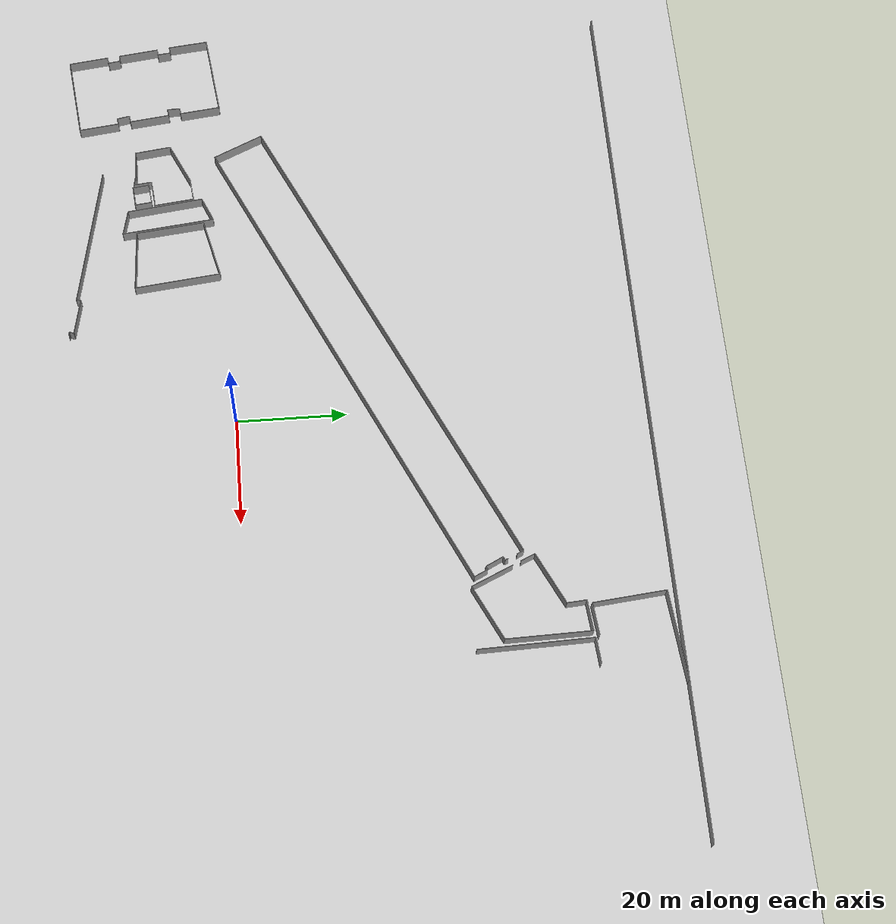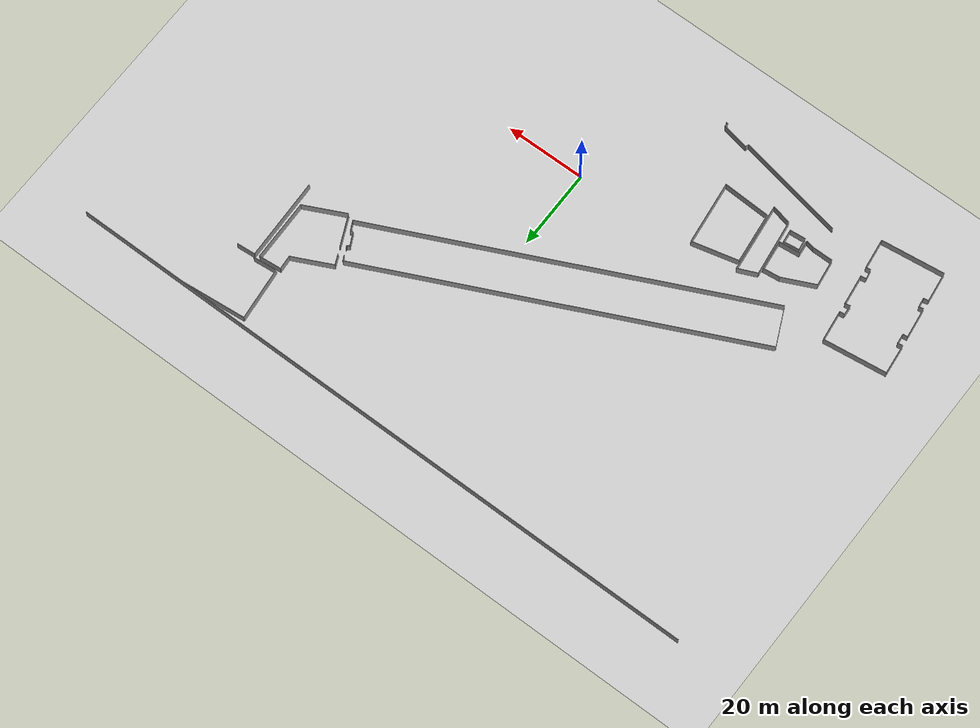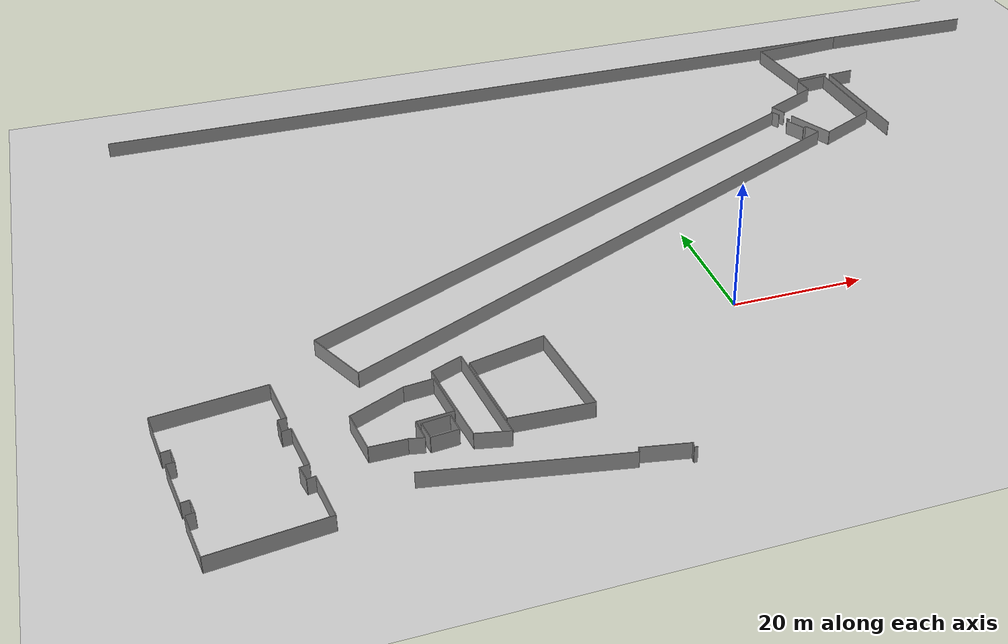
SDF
<sdf version="1.6">
 <world name="default">
  <model name="ground_plane">
   <static>1</static>
   <link name="link">
    <collision name="collision">
     <geometry><plane><normal>0 0 1</normal><size>100 100</size></plane></geometry>
     <surface><friction><ode><mu>100</mu><mu2>50</mu2></ode></friction></surface>
    </collision>
    <visual name="visual">
     <cast_shadows>0</cast_shadows>
     <geometry><plane><normal>0 0 1</normal><size>100 100</size></plane></geometry>
     <material>
      <script><uri>file://media/materials/scripts/gazebo.material</uri><name>Gazebo/Grey</name></script>
     </material>
    </visual>
   </link>
  </model>
  <model name="50023964">
   <static>1</static>
   <link name="Wall_165">
    <collision name="Wall_165_Collision">
     <geometry><box><size>27.4973243449 0.1 2.5</size></box></geometry>
     <pose>13.7486621724 0 1.25 0 0 0</pose>
    </collision>
    <visual name="Wall_165_Visual">
     <pose>13.7486621724 0 1.25 0 0 0</pose>
     <geometry><box><size>27.4973243449 0.1 2.5</size></box></geometry>
     <material>
      <script><uri>file://media/materials/scripts/gazebo.material</uri><name>Gazebo/Grey</name></script>
      <ambient>1 1 1 1</ambient>
     </material>
    </visual>
    <pose>29.4504461592 -97.8268076593 0 0 0 -0.189604450964</pose>
   </link>
   <link name="Wall_166">
    <collision name="Wall_166_Collision">
     <geometry><box><size>0.832153407852 0.1 2.5</size></box></geometry>
     <pose>0.416076703926 0 1.25 0 0 0</pose>
    </collision>
    <visual name="Wall_166_Visual">
     <pose>0.416076703926 0 1.25 0 0 0</pose>
     <geometry><box><size>0.832153407852 0.1 2.5</size></box></geometry>
     <material>
      <script><uri>file://media/materials/scripts/gazebo.material</uri><name>Gazebo/Grey</name></script>
      <ambient>1 1 1 1</ambient>
     </material>
    </visual>
    <pose>56.4549871392 -103.009240735 0 0 0 1.3554386271</pose>
   </link>
   <link name="Wall_167">
    <collision name="Wall_167_Collision">
     <geometry><box><size>6.86046675847 0.1 2.5</size></box></geometry>
     <pose>3.43023337924 0 1.25 0 0 0</pose>
    </collision>
    <visual name="Wall_167_Visual">
     <pose>3.43023337924 0 1.25 0 0 0</pose>
     <geometry><box><size>6.86046675847 0.1 2.5</size></box></geometry>
     <material>
      <script><uri>file://media/materials/scripts/gazebo.material</uri><name>Gazebo/Grey</name></script>
      <ambient>1 1 1 1</ambient>
     </material>
    </visual>
    <pose>56.6328157251 -102.196310057 0 0 0 -0.193764493746</pose>
   </link>
   <link name="Wall_168">
    <collision name="Wall_168_Collision">
     <geometry><box><size>0.832153407852 0.1 2.5</size></box></geometry>
     <pose>0.416076703926 0 1.25 0 0 0</pose>
    </collision>
    <visual name="Wall_168_Visual">
     <pose>0.416076703926 0 1.25 0 0 0</pose>
     <geometry><box><size>0.832153407852 0.1 2.5</size></box></geometry>
     <material>
      <script><uri>file://media/materials/scripts/gazebo.material</uri><name>Gazebo/Grey</name></script>
      <ambient>1 1 1 1</ambient>
     </material>
    </visual>
    <pose>63.3648979073 -103.51732241 0 0 0 -1.78615402649</pose>
   </link>
   <link name="Wall_169">
    <collision name="Wall_169_Collision">
     <geometry><box><size>0.468428158257 0.1 2.5</size></box></geometry>
     <pose>0.234214079128 0 1.25 0 0 0</pose>
    </collision>
    <visual name="Wall_169_Visual">
     <pose>0.234214079128 0 1.25 0 0 0</pose>
     <geometry><box><size>0.468428158257 0.1 2.5</size></box></geometry>
     <material>
      <script><uri>file://media/materials/scripts/gazebo.material</uri><name>Gazebo/Grey</name></script>
      <ambient>1 1 1 1</ambient>
     </material>
    </visual>
    <pose>63.1870693214 -104.330253088 0 0 0 -0.218668945874</pose>
   </link>
   <link name="Wall_184">
    <collision name="Wall_184_Collision">
     <geometry><box><size>7.49296690853 0.1 2.5</size></box></geometry>
     <pose>3.74648345427 0 1.25 0 0 0</pose>
    </collision>
    <visual name="Wall_184_Visual">
     <pose>3.74648345427 0 1.25 0 0 0</pose>
     <geometry><box><size>7.49296690853 0.1 2.5</size></box></geometry>
     <material>
      <script><uri>file://media/materials/scripts/gazebo.material</uri><name>Gazebo/Grey</name></script>
      <ambient>1 1 1 1</ambient>
     </material>
    </visual>
    <pose>3.46054428249 -104.013718205 0 0 0 1.70573616304</pose>
   </link>
   <link name="Wall_185">
    <collision name="Wall_185_Collision">
     <geometry><box><size>1.25928135181 0.1 2.5</size></box></geometry>
     <pose>0.629640675905 0 1.25 0 0 0</pose>
    </collision>
    <visual name="Wall_185_Visual">
     <pose>0.629640675905 0 1.25 0 0 0</pose>
     <geometry><box><size>1.25928135181 0.1 2.5</size></box></geometry>
     <material>
      <script><uri>file://media/materials/scripts/gazebo.material</uri><name>Gazebo/Grey</name></script>
      <ambient>1 1 1 1</ambient>
     </material>
    </visual>
    <pose>2.45251024102 -96.5888666603 0 0 0 0.160870380355</pose>
   </link>
   <link name="Wall_186">
    <collision name="Wall_186_Collision">
     <geometry><box><size>2.30914223702 0.1 2.5</size></box></geometry>
     <pose>1.15457111851 0 1.25 0 0 0</pose>
    </collision>
    <visual name="Wall_186_Visual">
     <pose>1.15457111851 0 1.25 0 0 0</pose>
     <geometry><box><size>2.30914223702 0.1 2.5</size></box></geometry>
     <material>
      <script><uri>file://media/materials/scripts/gazebo.material</uri><name>Gazebo/Grey</name></script>
      <ambient>1 1 1 1</ambient>
     </material>
    </visual>
    <pose>3.69553205678 -96.3871582357 0 0 0 1.71675416221</pose>
   </link>
   <link name="Wall_187">
    <collision name="Wall_187_Collision">
     <geometry><box><size>1.15473375954 0.1 2.5</size></box></geometry>
     <pose>0.577366879771 0 1.25 0 0 0</pose>
    </collision>
    <visual name="Wall_187_Visual">
     <pose>0.577366879771 0 1.25 0 0 0</pose>
     <geometry><box><size>1.15473375954 0.1 2.5</size></box></geometry>
     <material>
      <script><uri>file://media/materials/scripts/gazebo.material</uri><name>Gazebo/Grey</name></script>
      <ambient>1 1 1 1</ambient>
     </material>
    </visual>
    <pose>3.35969007018 -94.102568988 0 0 0 -2.9954331563</pose>
   </link>
   <link name="Wall_188">
    <collision name="Wall_188_Collision">
     <geometry><box><size>7.59288269853 0.1 2.5</size></box></geometry>
     <pose>3.79644134927 0 1.25 0 0 0</pose>
    </collision>
    <visual name="Wall_188_Visual">
     <pose>3.79644134927 0 1.25 0 0 0</pose>
     <geometry><box><size>7.59288269853 0.1 2.5</size></box></geometry>
     <material>
      <script><uri>file://media/materials/scripts/gazebo.material</uri><name>Gazebo/Grey</name></script>
      <ambient>1 1 1 1</ambient>
     </material>
    </visual>
    <pose>2.2172684259 -94.2707440221 0 0 0 1.70391607351</pose>
   </link>
   <link name="Wall_189">
    <collision name="Wall_189_Collision">
     <geometry><box><size>1.18360900284 0.1 2.5</size></box></geometry>
     <pose>0.591804501418 0 1.25 0 0 0</pose>
    </collision>
    <visual name="Wall_189_Visual">
     <pose>0.591804501418 0 1.25 0 0 0</pose>
     <geometry><box><size>1.18360900284 0.1 2.5</size></box></geometry>
     <material>
      <script><uri>file://media/materials/scripts/gazebo.material</uri><name>Gazebo/Grey</name></script>
      <ambient>1 1 1 1</ambient>
     </material>
    </visual>
    <pose>1.20948842526 -86.7450382649 0 0 0 0.113785914449</pose>
   </link>
   <link name="Wall_190">
    <collision name="Wall_190_Collision">
     <geometry><box><size>2.43782549676 0.1 2.5</size></box></geometry>
     <pose>1.21891274838 0 1.25 0 0 0</pose>
    </collision>
    <visual name="Wall_190_Visual">
     <pose>1.21891274838 0 1.25 0 0 0</pose>
     <geometry><box><size>2.43782549676 0.1 2.5</size></box></geometry>
     <material>
      <script><uri>file://media/materials/scripts/gazebo.material</uri><name>Gazebo/Grey</name></script>
      <ambient>1 1 1 1</ambient>
     </material>
    </visual>
    <pose>2.38544346004 -86.6106506621 0 0 0 1.69522887379</pose>
   </link>
   <link name="Wall_191">
    <collision name="Wall_191_Collision">
     <geometry><box><size>1.25431283755 0.1 2.5</size></box></geometry>
     <pose>0.627156418774 0 1.25 0 0 0</pose>
    </collision>
    <visual name="Wall_191_Visual">
     <pose>0.627156418774 0 1.25 0 0 0</pose>
     <geometry><box><size>1.25431283755 0.1 2.5</size></box></geometry>
     <material>
      <script><uri>file://media/materials/scripts/gazebo.material</uri><name>Gazebo/Grey</name></script>
      <ambient>1 1 1 1</ambient>
     </material>
    </visual>
    <pose>2.08288082309 -84.1916738116 0 0 0 -3.00731460829</pose>
   </link>
   <link name="Wall_192">
    <collision name="Wall_192_Collision">
     <geometry><box><size>7.43888077681 0.1 2.5</size></box></geometry>
     <pose>3.71944038841 0 1.25 0 0 0</pose>
    </collision>
    <visual name="Wall_192_Visual">
     <pose>3.71944038841 0 1.25 0 0 0</pose>
     <geometry><box><size>7.43888077681 0.1 2.5</size></box></geometry>
     <material>
      <script><uri>file://media/materials/scripts/gazebo.material</uri><name>Gazebo/Grey</name></script>
      <ambient>1 1 1 1</ambient>
     </material>
    </visual>
    <pose>0.839859007335 -84.3595948049 0 0 0 1.68393882538</pose>
   </link>
   <link name="Wall_193">
    <collision name="Wall_193_Collision">
     <geometry><box><size>15.7768453992 0.1 2.5</size></box></geometry>
     <pose>7.8884226996 0 1.25 0 0 0</pose>
    </collision>
    <visual name="Wall_193_Visual">
     <pose>7.8884226996 0 1.25 0 0 0</pose>
     <geometry><box><size>15.7768453992 0.1 2.5</size></box></geometry>
     <material>
      <script><uri>file://media/materials/scripts/gazebo.material</uri><name>Gazebo/Grey</name></script>
      <ambient>1 1 1 1</ambient>
     </material>
    </visual>
    <pose>0.0 -76.9682766505 0 0 0 0.12383571639</pose>
   </link>
   <link name="Wall_194">
    <collision name="Wall_194_Collision">
     <geometry><box><size>7.55099914807 0.1 2.5</size></box></geometry>
     <pose>3.77549957403 0 1.25 0 0 0</pose>
    </collision>
    <visual name="Wall_194_Visual">
     <pose>3.77549957403 0 1.25 0 0 0</pose>
     <geometry><box><size>7.55099914807 0.1 2.5</size></box></geometry>
     <material>
      <script><uri>file://media/materials/scripts/gazebo.material</uri><name>Gazebo/Grey</name></script>
      <ambient>1 1 1 1</ambient>
     </material>
    </visual>
    <pose>15.6560287066 -75.0195293893 0 0 0 -1.44589050377</pose>
   </link>
   <link name="Wall_195">
    <collision name="Wall_195_Collision">
     <geometry><box><size>1.22108955889 0.1 2.5</size></box></geometry>
     <pose>0.610544779447 0 1.25 0 0 0</pose>
    </collision>
    <visual name="Wall_195_Visual">
     <pose>0.610544779447 0 1.25 0 0 0</pose>
     <geometry><box><size>1.22108955889 0.1 2.5</size></box></geometry>
     <material>
      <script><uri>file://media/materials/scripts/gazebo.material</uri><name>Gazebo/Grey</name></script>
      <ambient>1 1 1 1</ambient>
     </material>
    </visual>
    <pose>16.5967419263 -82.5117017561 0 0 0 -3.00363814652</pose>
   </link>
   <link name="Wall_196">
    <collision name="Wall_196_Collision">
     <geometry><box><size>2.3892259267 0.1 2.5</size></box></geometry>
     <pose>1.19461296335 0 1.25 0 0 0</pose>
    </collision>
    <visual name="Wall_196_Visual">
     <pose>1.19461296335 0 1.25 0 0 0</pose>
     <geometry><box><size>2.3892259267 0.1 2.5</size></box></geometry>
     <material>
      <script><uri>file://media/materials/scripts/gazebo.material</uri><name>Gazebo/Grey</name></script>
      <ambient>1 1 1 1</ambient>
     </material>
    </visual>
    <pose>15.387253501 -82.6796227494 0 0 0 -1.51451928571</pose>
   </link>
   <link name="Wall_197">
    <collision name="Wall_197_Collision">
     <geometry><box><size>1.32573817046 0.1 2.5</size></box></geometry>
     <pose>0.662869085228 0 1.25 0 0 0</pose>
    </collision>
    <visual name="Wall_197_Visual">
     <pose>0.662869085228 0 1.25 0 0 0</pose>
     <geometry><box><size>1.32573817046 0.1 2.5</size></box></geometry>
     <material>
      <script><uri>file://media/materials/scripts/gazebo.material</uri><name>Gazebo/Grey</name></script>
      <ambient>1 1 1 1</ambient>
     </material>
    </visual>
    <pose>15.5216411038 -85.0650662094 0 0 0 0.152547347044</pose>
   </link>
   <link name="Wall_198">
    <collision name="Wall_198_Collision">
     <geometry><box><size>7.48849630573 0.1 2.5</size></box></geometry>
     <pose>3.74424815287 0 1.25 0 0 0</pose>
    </collision>
    <visual name="Wall_198_Visual">
     <pose>3.74424815287 0 1.25 0 0 0</pose>
     <geometry><box><size>7.48849630573 0.1 2.5</size></box></geometry>
     <material>
      <script><uri>file://media/materials/scripts/gazebo.material</uri><name>Gazebo/Grey</name></script>
      <ambient>1 1 1 1</ambient>
     </material>
    </visual>
    <pose>16.8319837414 -84.8636118256 0 0 0 -1.44032740091</pose>
   </link>
   <link name="Wall_199">
    <collision name="Wall_199_Collision">
     <geometry><box><size>1.33104126266 0.1 2.5</size></box></geometry>
     <pose>0.665520631328 0 1.25 0 0 0</pose>
    </collision>
    <visual name="Wall_199_Visual">
     <pose>0.665520631328 0 1.25 0 0 0</pose>
     <geometry><box><size>1.33104126266 0.1 2.5</size></box></geometry>
     <material>
      <script><uri>file://media/materials/scripts/gazebo.material</uri><name>Gazebo/Grey</name></script>
      <ambient>1 1 1 1</ambient>
     </material>
    </visual>
    <pose>17.8062303515 -92.2884633705 0 0 0 -2.96392423371</pose>
   </link>
   <link name="Wall_200">
    <collision name="Wall_200_Collision">
     <geometry><box><size>2.39820806939 0.1 2.5</size></box></geometry>
     <pose>1.1991040347 0 1.25 0 0 0</pose>
    </collision>
    <visual name="Wall_200_Visual">
     <pose>1.1991040347 0 1.25 0 0 0</pose>
     <geometry><box><size>2.39820806939 0.1 2.5</size></box></geometry>
     <material>
      <script><uri>file://media/materials/scripts/gazebo.material</uri><name>Gazebo/Grey</name></script>
      <ambient>1 1 1 1</ambient>
     </material>
    </visual>
    <pose>16.4961417548 -92.5237051856 0 0 0 -1.37344231589</pose>
   </link>
   <link name="Wall_201">
    <collision name="Wall_201_Collision">
     <geometry><box><size>1.19308596193 0.1 2.5</size></box></geometry>
     <pose>0.596542980965 0 1.25 0 0 0</pose>
    </collision>
    <visual name="Wall_201_Visual">
     <pose>0.596542980965 0 1.25 0 0 0</pose>
     <geometry><box><size>1.19308596193 0.1 2.5</size></box></geometry>
     <material>
      <script><uri>file://media/materials/scripts/gazebo.material</uri><name>Gazebo/Grey</name></script>
      <ambient>1 1 1 1</ambient>
     </material>
    </visual>
    <pose>16.9663713442 -94.8753612143 0 0 0 0.169664346654</pose>
   </link>
   <link name="Wall_202">
    <collision name="Wall_202_Collision">
     <geometry><box><size>7.52174596099 0.1 2.5</size></box></geometry>
     <pose>3.76087298049 0 1.25 0 0 0</pose>
    </collision>
    <visual name="Wall_202_Visual">
     <pose>3.76087298049 0 1.25 0 0 0</pose>
     <geometry><box><size>7.52174596099 0.1 2.5</size></box></geometry>
     <material>
      <script><uri>file://media/materials/scripts/gazebo.material</uri><name>Gazebo/Grey</name></script>
      <ambient>1 1 1 1</ambient>
     </material>
    </visual>
    <pose>18.142326379 -94.6739068305 0 0 0 -1.44090740775</pose>
   </link>
   <link name="Wall_203">
    <collision name="Wall_203_Collision">
     <geometry><box><size>15.7686714821 0.1 2.5</size></box></geometry>
     <pose>7.88433574103 0 1.25 0 0 0</pose>
    </collision>
    <visual name="Wall_203_Visual">
     <pose>7.88433574103 0 1.25 0 0 0</pose>
     <geometry><box><size>15.7686714821 0.1 2.5</size></box></geometry>
     <material>
      <script><uri>file://media/materials/scripts/gazebo.material</uri><name>Gazebo/Grey</name></script>
      <ambient>1 1 1 1</ambient>
     </material>
    </visual>
    <pose>19.1165729891 -102.132291766 0 0 0 -3.0219935331</pose>
   </link>
   <link name="Wall_204">
    <collision name="Wall_204_Collision">
     <geometry><box><size>3.03349316806 0.1 2.5</size></box></geometry>
     <pose>1.51674658403 0 1.25 0 0 0</pose>
    </collision>
    <visual name="Wall_204_Visual">
     <pose>1.51674658403 0 1.25 0 0 0</pose>
     <geometry><box><size>3.03349316806 0.1 2.5</size></box></geometry>
     <material>
      <script><uri>file://media/materials/scripts/gazebo.material</uri><name>Gazebo/Grey</name></script>
      <ambient>1 1 1 1</ambient>
     </material>
    </visual>
    <pose>32.8756787654 -92.1174938871 0 0 0 1.70967331597</pose>
   </link>
   <link name="Wall_205">
    <collision name="Wall_205_Collision">
     <geometry><box><size>3.91834907774 0.1 2.5</size></box></geometry>
     <pose>1.95917453887 0 1.25 0 0 0</pose>
    </collision>
    <visual name="Wall_205_Visual">
     <pose>1.95917453887 0 1.25 0 0 0</pose>
     <geometry><box><size>3.91834907774 0.1 2.5</size></box></geometry>
     <material>
      <script><uri>file://media/materials/scripts/gazebo.material</uri><name>Gazebo/Grey</name></script>
      <ambient>1 1 1 1</ambient>
     </material>
    </visual>
    <pose>32.4557492617 -89.113206948 0 0 0 0.124346952923</pose>
   </link>
   <link name="Wall_206">
    <collision name="Wall_206_Collision">
     <geometry><box><size>3.13734370677 0.1 2.5</size></box></geometry>
     <pose>1.56867185338 0 1.25 0 0 0</pose>
    </collision>
    <visual name="Wall_206_Visual">
     <pose>1.56867185338 0 1.25 0 0 0</pose>
     <geometry><box><size>3.13734370677 0.1 2.5</size></box></geometry>
     <material>
      <script><uri>file://media/materials/scripts/gazebo.material</uri><name>Gazebo/Grey</name></script>
      <ambient>1 1 1 1</ambient>
     </material>
    </visual>
    <pose>36.343844273 -88.6272268267 0 0 0 -1.45083035254</pose>
   </link>
   <link name="Wall_207">
    <collision name="Wall_207_Collision">
     <geometry><box><size>3.86193365125 0.1 2.5</size></box></geometry>
     <pose>1.93096682562 0 1.25 0 0 0</pose>
    </collision>
    <visual name="Wall_207_Visual">
     <pose>1.93096682562 0 1.25 0 0 0</pose>
     <geometry><box><size>3.86193365125 0.1 2.5</size></box></geometry>
     <material>
      <script><uri>file://media/materials/scripts/gazebo.material</uri><name>Gazebo/Grey</name></script>
      <ambient>1 1 1 1</ambient>
     </material>
    </visual>
    <pose>36.7193166301 -91.74202153 0 0 0 -3.04421490285</pose>
   </link>
   <link name="Wall_208">
    <collision name="Wall_208_Collision">
     <geometry><box><size>5.07119898185 0.1 2.5</size></box></geometry>
     <pose>2.53559949093 0 1.25 0 0 0</pose>
    </collision>
    <visual name="Wall_208_Visual">
     <pose>2.53559949093 0 1.25 0 0 0</pose>
     <geometry><box><size>5.07119898185 0.1 2.5</size></box></geometry>
     <material>
      <script><uri>file://media/materials/scripts/gazebo.material</uri><name>Gazebo/Grey</name></script>
      <ambient>1 1 1 1</ambient>
     </material>
    </visual>
    <pose>25.1190498873 -91.4760407736 0 0 0 -0.00375712088472</pose>
   </link>
   <link name="Wall_209">
    <collision name="Wall_209_Collision">
     <geometry><box><size>2.09821424189 0.1 2.5</size></box></geometry>
     <pose>1.04910712095 0 1.25 0 0 0</pose>
    </collision>
    <visual name="Wall_209_Visual">
     <pose>1.04910712095 0 1.25 0 0 0</pose>
     <geometry><box><size>2.09821424189 0.1 2.5</size></box></geometry>
     <material>
      <script><uri>file://media/materials/scripts/gazebo.material</uri><name>Gazebo/Grey</name></script>
      <ambient>1 1 1 1</ambient>
     </material>
    </visual>
    <pose>30.1902130768 -91.4950938363 0 0 0 -0.202856872319</pose>
   </link>
   <link name="Wall_210">
    <collision name="Wall_210_Collision">
     <geometry><box><size>3.38359539105 0.1 2.5</size></box></geometry>
     <pose>1.69179769553 0 1.25 0 0 0</pose>
    </collision>
    <visual name="Wall_210_Visual">
     <pose>1.69179769553 0 1.25 0 0 0</pose>
     <geometry><box><size>3.38359539105 0.1 2.5</size></box></geometry>
     <material>
      <script><uri>file://media/materials/scripts/gazebo.material</uri><name>Gazebo/Grey</name></script>
      <ambient>1 1 1 1</ambient>
     </material>
    </visual>
    <pose>32.2454034486 -91.9178177892 0 0 0 1.68456275865</pose>
   </link>
   <link name="Wall_211">
    <collision name="Wall_211_Collision">
     <geometry><box><size>5.25246358018 0.1 2.5</size></box></geometry>
     <pose>2.62623179009 0 1.25 0 0 0</pose>
    </collision>
    <visual name="Wall_211_Visual">
     <pose>2.62623179009 0 1.25 0 0 0</pose>
     <geometry><box><size>5.25246358018 0.1 2.5</size></box></geometry>
     <material>
      <script><uri>file://media/materials/scripts/gazebo.material</uri><name>Gazebo/Grey</name></script>
      <ambient>1 1 1 1</ambient>
     </material>
    </visual>
    <pose>31.861293703 -88.5560953923 0 0 0 0.102570654576</pose>
   </link>
   <link name="Wall_212">
    <collision name="Wall_212_Collision">
     <geometry><box><size>7.41221561848 0.1 2.5</size></box></geometry>
     <pose>3.70610780924 0 1.25 0 0 0</pose>
    </collision>
    <visual name="Wall_212_Visual">
     <pose>3.70610780924 0 1.25 0 0 0</pose>
     <geometry><box><size>7.41221561848 0.1 2.5</size></box></geometry>
     <material>
      <script><uri>file://media/materials/scripts/gazebo.material</uri><name>Gazebo/Grey</name></script>
      <ambient>1 1 1 1</ambient>
     </material>
    </visual>
    <pose>37.0861515989 -88.0182909403 0 0 0 1.69290675162</pose>
   </link>
   <link name="Wall_213">
    <collision name="Wall_213_Collision">
     <geometry><box><size>4.23397434508 0.1 2.5</size></box></geometry>
     <pose>2.11698717254 0 1.25 0 0 0</pose>
    </collision>
    <visual name="Wall_213_Visual">
     <pose>2.11698717254 0 1.25 0 0 0</pose>
     <geometry><box><size>4.23397434508 0.1 2.5</size></box></geometry>
     <material>
      <script><uri>file://media/materials/scripts/gazebo.material</uri><name>Gazebo/Grey</name></script>
      <ambient>1 1 1 1</ambient>
     </material>
    </visual>
    <pose>36.1832904639 -80.6612682989 0 0 0 -3.02794712292</pose>
   </link>
   <link name="Wall_214">
    <collision name="Wall_214_Collision">
     <geometry><box><size>8.59334227549 0.1 2.5</size></box></geometry>
     <pose>4.29667113774 0 1.25 0 0 0</pose>
    </collision>
    <visual name="Wall_214_Visual">
     <pose>4.29667113774 0 1.25 0 0 0</pose>
     <geometry><box><size>8.59334227549 0.1 2.5</size></box></geometry>
     <material>
      <script><uri>file://media/materials/scripts/gazebo.material</uri><name>Gazebo/Grey</name></script>
      <ambient>1 1 1 1</ambient>
     </material>
    </visual>
    <pose>31.976628243 -81.1414054809 0 0 0 -2.70293488197</pose>
   </link>
   <link name="Wall_215">
    <collision name="Wall_215_Collision">
     <geometry><box><size>6.74813709335 0.1 2.5</size></box></geometry>
     <pose>3.37406854667 0 1.25 0 0 0</pose>
    </collision>
    <visual name="Wall_215_Visual">
     <pose>3.37406854667 0 1.25 0 0 0</pose>
     <geometry><box><size>6.74813709335 0.1 2.5</size></box></geometry>
     <material>
      <script><uri>file://media/materials/scripts/gazebo.material</uri><name>Gazebo/Grey</name></script>
      <ambient>1 1 1 1</ambient>
     </material>
    </visual>
    <pose>24.1968816487 -84.791210187 0 0 0 -1.43371214897</pose>
   </link>
   <link name="Wall_216">
    <collision name="Wall_216_Collision">
     <geometry><box><size>14.1820970781 0.1 2.5</size></box></geometry>
     <pose>7.09104853907 0 1.25 0 0 0</pose>
    </collision>
    <visual name="Wall_216_Visual">
     <pose>7.09104853907 0 1.25 0 0 0</pose>
     <geometry><box><size>14.1820970781 0.1 2.5</size></box></geometry>
     <material>
      <script><uri>file://media/materials/scripts/gazebo.material</uri><name>Gazebo/Grey</name></script>
      <ambient>1 1 1 1</ambient>
     </material>
    </visual>
    <pose>38.1386427868 -93.1270521736 0 0 0 1.70148351466</pose>
   </link>
   <link name="Wall_217">
    <collision name="Wall_217_Collision">
     <geometry><box><size>5.03688815141 0.1 2.5</size></box></geometry>
     <pose>2.5184440757 0 1.25 0 0 0</pose>
    </collision>
    <visual name="Wall_217_Visual">
     <pose>2.5184440757 0 1.25 0 0 0</pose>
     <geometry><box><size>5.03688815141 0.1 2.5</size></box></geometry>
     <material>
      <script><uri>file://media/materials/scripts/gazebo.material</uri><name>Gazebo/Grey</name></script>
      <ambient>1 1 1 1</ambient>
     </material>
    </visual>
    <pose>36.2904956972 -79.0658918421 0 0 0 0.411746210543</pose>
   </link>
   <link name="Wall_218">
    <collision name="Wall_218_Collision">
     <geometry><box><size>17.2380819554 0.1 2.5</size></box></geometry>
     <pose>8.61904097772 0 1.25 0 0 0</pose>
    </collision>
    <visual name="Wall_218_Visual">
     <pose>8.61904097772 0 1.25 0 0 0</pose>
     <geometry><box><size>17.2380819554 0.1 2.5</size></box></geometry>
     <material>
      <script><uri>file://media/materials/scripts/gazebo.material</uri><name>Gazebo/Grey</name></script>
      <ambient>1 1 1 1</ambient>
     </material>
    </visual>
    <pose>40.9064177066 -77.0500778 0 0 0 -1.45358857233</pose>
   </link>
   <link name="Wall_219">
    <collision name="Wall_219_Collision">
     <geometry><box><size>4.89594053191 0.1 2.5</size></box></geometry>
     <pose>2.44797026596 0 1.25 0 0 0</pose>
    </collision>
    <visual name="Wall_219_Visual">
     <pose>2.44797026596 0 1.25 0 0 0</pose>
     <geometry><box><size>4.89594053191 0.1 2.5</size></box></geometry>
     <material>
      <script><uri>file://media/materials/scripts/gazebo.material</uri><name>Gazebo/Grey</name></script>
      <ambient>1 1 1 1</ambient>
     </material>
    </visual>
    <pose>42.9222317488 -94.1698898098 0 0 0 2.92694777424</pose>
   </link>
   <link name="Wall_220">
    <collision name="Wall_220_Collision">
     <geometry><box><size>12.7638892101 0.1 2.5</size></box></geometry>
     <pose>6.38194460507 0 1.25 0 0 0</pose>
    </collision>
    <visual name="Wall_220_Visual">
     <pose>6.38194460507 0 1.25 0 0 0</pose>
     <geometry><box><size>12.7638892101 0.1 2.5</size></box></geometry>
     <material>
      <script><uri>file://media/materials/scripts/gazebo.material</uri><name>Gazebo/Grey</name></script>
      <ambient>1 1 1 1</ambient>
     </material>
    </visual>
    <pose>42.9641484869 -91.5911212727 0 0 0 1.68693301142</pose>
   </link>
   <link name="Wall_221">
    <collision name="Wall_221_Collision">
     <geometry><box><size>11.6366087083 0.1 2.5</size></box></geometry>
     <pose>5.81830435414 0 1.25 0 0 0</pose>
    </collision>
    <visual name="Wall_221_Visual">
     <pose>5.81830435414 0 1.25 0 0 0</pose>
     <geometry><box><size>11.6366087083 0.1 2.5</size></box></geometry>
     <material>
      <script><uri>file://media/materials/scripts/gazebo.material</uri><name>Gazebo/Grey</name></script>
      <ambient>1 1 1 1</ambient>
     </material>
    </visual>
    <pose>41.4851227335 -78.913213299 0 0 0 0.236872177991</pose>
   </link>
   <link name="Wall_222">
    <collision name="Wall_222_Collision">
     <geometry><box><size>16.0430528917 0.1 2.5</size></box></geometry>
     <pose>8.02152644584 0 1.25 0 0 0</pose>
    </collision>
    <visual name="Wall_222_Visual">
     <pose>8.02152644584 0 1.25 0 0 0</pose>
     <geometry><box><size>16.0430528917 0.1 2.5</size></box></geometry>
     <material>
      <script><uri>file://media/materials/scripts/gazebo.material</uri><name>Gazebo/Grey</name></script>
      <ambient>1 1 1 1</ambient>
     </material>
    </visual>
    <pose>52.7967990855 -76.1825283414 0 0 0 -1.45062091309</pose>
   </link>
   <link name="Wall_223">
    <collision name="Wall_223_Collision">
     <geometry><box><size>11.7674335632 0.1 2.5</size></box></geometry>
     <pose>5.88371678162 0 1.25 0 0 0</pose>
    </collision>
    <visual name="Wall_223_Visual">
     <pose>5.88371678162 0 1.25 0 0 0</pose>
     <geometry><box><size>11.7674335632 0.1 2.5</size></box></geometry>
     <material>
      <script><uri>file://media/materials/scripts/gazebo.material</uri><name>Gazebo/Grey</name></script>
      <ambient>1 1 1 1</ambient>
     </material>
    </visual>
    <pose>54.7201422629 -92.109872662 0 0 0 3.09749471546</pose>
   </link>
   <link name="Wall_224">
    <collision name="Wall_224_Collision">
     <geometry><box><size>10.0124607713 0.1 2.5</size></box></geometry>
     <pose>5.00623038563 0 1.25 0 0 0</pose>
    </collision>
    <visual name="Wall_224_Visual">
     <pose>5.00623038563 0 1.25 0 0 0</pose>
     <geometry><box><size>10.0124607713 0.1 2.5</size></box></geometry>
     <material>
      <script><uri>file://media/materials/scripts/gazebo.material</uri><name>Gazebo/Grey</name></script>
      <ambient>1 1 1 1</ambient>
     </material>
    </visual>
    <pose>27.0878663745 -76.2612810009 0 0 0 2.00442684478</pose>
   </link>
   <link name="Wall_225">
    <collision name="Wall_225_Collision">
     <geometry><box><size>97.9972243625 0.1 2.5</size></box></geometry>
     <pose>48.9986121812 0 1.25 0 0 0</pose>
    </collision>
    <visual name="Wall_225_Visual">
     <pose>48.9986121812 0 1.25 0 0 0</pose>
     <geometry><box><size>97.9972243625 0.1 2.5</size></box></geometry>
     <material>
      <script><uri>file://media/materials/scripts/gazebo.material</uri><name>Gazebo/Grey</name></script>
      <ambient>1 1 1 1</ambient>
     </material>
    </visual>
    <pose>22.8809501127 -67.1755104633 0 0 0 0.43953365536</pose>
   </link>
   <link name="Wall_226">
    <collision name="Wall_226_Collision">
     <geometry><box><size>1.39423721559 0.1 2.5</size></box></geometry>
     <pose>0.697118607794 0 1.25 0 0 0</pose>
    </collision>
    <visual name="Wall_226_Visual">
     <pose>0.697118607794 0 1.25 0 0 0</pose>
     <geometry><box><size>1.39423721559 0.1 2.5</size></box></geometry>
     <material>
      <script><uri>file://media/materials/scripts/gazebo.material</uri><name>Gazebo/Grey</name></script>
      <ambient>1 1 1 1</ambient>
     </material>
    </visual>
    <pose>111.563557842 -25.4759772633 0 0 0 -1.1035633355</pose>
   </link>
   <link name="Wall_227">
    <collision name="Wall_227_Collision">
     <geometry><box><size>0.59088391475 0.1 2.5</size></box></geometry>
     <pose>0.295441957375 0 1.25 0 0 0</pose>
    </collision>
    <visual name="Wall_227_Visual">
     <pose>0.295441957375 0 1.25 0 0 0</pose>
     <geometry><box><size>0.59088391475 0.1 2.5</size></box></geometry>
     <material>
      <script><uri>file://media/materials/scripts/gazebo.material</uri><name>Gazebo/Grey</name></script>
      <ambient>1 1 1 1</ambient>
     </material>
    </visual>
    <pose>112.902861135 -28.3466387222 0 0 0 -1.12637711689</pose>
   </link>
   <link name="Wall_228">
    <collision name="Wall_228_Collision">
     <geometry><box><size>0.70447681554 0.1 2.5</size></box></geometry>
     <pose>0.35223840777 0 1.25 0 0 0</pose>
    </collision>
    <visual name="Wall_228_Visual">
     <pose>0.35223840777 0 1.25 0 0 0</pose>
     <geometry><box><size>0.70447681554 0.1 2.5</size></box></geometry>
     <material>
      <script><uri>file://media/materials/scripts/gazebo.material</uri><name>Gazebo/Grey</name></script>
      <ambient>1 1 1 1</ambient>
     </material>
    </visual>
    <pose>113.156901972 -28.88012448 0 0 0 -2.69407267843</pose>
   </link>
   <link name="Wall_229">
    <collision name="Wall_229_Collision">
     <geometry><box><size>3.54466631057 0.1 2.5</size></box></geometry>
     <pose>1.77233315528 0 1.25 0 0 0</pose>
    </collision>
    <visual name="Wall_229_Visual">
     <pose>1.77233315528 0 1.25 0 0 0</pose>
     <geometry><box><size>3.54466631057 0.1 2.5</size></box></geometry>
     <material>
      <script><uri>file://media/materials/scripts/gazebo.material</uri><name>Gazebo/Grey</name></script>
      <ambient>1 1 1 1</ambient>
     </material>
    </visual>
    <pose>112.521799879 -29.1849734845 0 0 0 -1.11035383502</pose>
   </link>
   <link name="Wall_230">
    <collision name="Wall_230_Collision">
     <geometry><box><size>0.637131177999 0.1 2.5</size></box></geometry>
     <pose>0.318565589 0 1.25 0 0 0</pose>
    </collision>
    <visual name="Wall_230_Visual">
     <pose>0.318565589 0 1.25 0 0 0</pose>
     <geometry><box><size>0.637131177999 0.1 2.5</size></box></geometry>
     <material>
      <script><uri>file://media/materials/scripts/gazebo.material</uri><name>Gazebo/Grey</name></script>
      <ambient>1 1 1 1</ambient>
     </material>
    </visual>
    <pose>114.096853069 -32.3604839478 0 0 0 0.410127340541</pose>
   </link>
   <link name="Wall_231">
    <collision name="Wall_231_Collision">
     <geometry><box><size>2.65858317908 0.1 2.5</size></box></geometry>
     <pose>1.32929158954 0 1.25 0 0 0</pose>
    </collision>
    <visual name="Wall_231_Visual">
     <pose>1.32929158954 0 1.25 0 0 0</pose>
     <geometry><box><size>2.65858317908 0.1 2.5</size></box></geometry>
     <material>
      <script><uri>file://media/materials/scripts/gazebo.material</uri><name>Gazebo/Grey</name></script>
      <ambient>1 1 1 1</ambient>
     </material>
    </visual>
    <pose>114.681146994 -32.1064431107 0 0 0 -1.11569551823</pose>
   </link>
   <link name="Wall_232">
    <collision name="Wall_232_Collision">
     <geometry><box><size>98.0976013429 0.1 2.5</size></box></geometry>
     <pose>49.0488006714 0 1.25 0 0 0</pose>
    </collision>
    <visual name="Wall_232_Visual">
     <pose>49.0488006714 0 1.25 0 0 0</pose>
     <geometry><box><size>98.0976013429 0.1 2.5</size></box></geometry>
     <material>
      <script><uri>file://media/materials/scripts/gazebo.material</uri><name>Gazebo/Grey</name></script>
      <ambient>1 1 1 1</ambient>
     </material>
    </visual>
    <pose>115.849734845 -34.4944269791 0 0 0 -2.7017817727</pose>
   </link>
   <link name="Wall_233">
    <collision name="Wall_233_Collision">
     <geometry><box><size>8.2509135196 0.1 2.5</size></box></geometry>
     <pose>4.1254567598 0 1.25 0 0 0</pose>
    </collision>
    <visual name="Wall_233_Visual">
     <pose>4.1254567598 0 1.25 0 0 0</pose>
     <geometry><box><size>8.2509135196 0.1 2.5</size></box></geometry>
     <material>
      <script><uri>file://media/materials/scripts/gazebo.material</uri><name>Gazebo/Grey</name></script>
      <ambient>1 1 1 1</ambient>
     </material>
    </visual>
    <pose>117.594995396 -35.185418056 0 0 0 1.99902151095</pose>
   </link>
   <link name="Wall_234">
    <collision name="Wall_234_Collision">
     <geometry><box><size>2.80214364998 0.1 2.5</size></box></geometry>
     <pose>1.40107182499 0 1.25 0 0 0</pose>
    </collision>
    <visual name="Wall_234_Visual">
     <pose>1.40107182499 0 1.25 0 0 0</pose>
     <geometry><box><size>2.80214364998 0.1 2.5</size></box></geometry>
     <material>
      <script><uri>file://media/materials/scripts/gazebo.material</uri><name>Gazebo/Grey</name></script>
      <ambient>1 1 1 1</ambient>
     </material>
    </visual>
    <pose>113.475469182 -26.1735734019 0 0 0 1.99271189933</pose>
   </link>
   <link name="Wall_235">
    <collision name="Wall_235_Collision">
     <geometry><box><size>10.4071663166 0.1 2.5</size></box></geometry>
     <pose>5.20358315829 0 1.25 0 0 0</pose>
    </collision>
    <visual name="Wall_235_Visual">
     <pose>5.20358315829 0 1.25 0 0 0</pose>
     <geometry><box><size>10.4071663166 0.1 2.5</size></box></geometry>
     <material>
      <script><uri>file://media/materials/scripts/gazebo.material</uri><name>Gazebo/Grey</name></script>
      <ambient>1 1 1 1</ambient>
     </material>
    </visual>
    <pose>112.327966721 -23.6171604585 0 0 0 0.450514602795</pose>
   </link>
   <link name="Wall_236">
    <collision name="Wall_236_Collision">
     <geometry><box><size>3.49804196313 0.1 2.5</size></box></geometry>
     <pose>1.74902098156 0 1.25 0 0 0</pose>
    </collision>
    <visual name="Wall_236_Visual">
     <pose>1.74902098156 0 1.25 0 0 0</pose>
     <geometry><box><size>3.49804196313 0.1 2.5</size></box></geometry>
     <material>
      <script><uri>file://media/materials/scripts/gazebo.material</uri><name>Gazebo/Grey</name></script>
      <ambient>1 1 1 1</ambient>
     </material>
    </visual>
    <pose>121.696738751 -19.085580007 0 0 0 1.65397374512</pose>
   </link>
   <link name="Wall_237">
    <collision name="Wall_237_Collision">
     <geometry><box><size>5.60060683905 0.1 2.5</size></box></geometry>
     <pose>2.80030341953 0 1.25 0 0 0</pose>
    </collision>
    <visual name="Wall_237_Visual">
     <pose>2.80030341953 0 1.25 0 0 0</pose>
     <geometry><box><size>5.60060683905 0.1 2.5</size></box></geometry>
     <material>
      <script><uri>file://media/materials/scripts/gazebo.material</uri><name>Gazebo/Grey</name></script>
      <ambient>1 1 1 1</ambient>
     </material>
    </visual>
    <pose>121.406116033 -15.5996316408 0 0 0 0.0909350332882</pose>
   </link>
   <link name="Wall_238">
    <collision name="Wall_238_Collision">
     <geometry><box><size>15.3199502562 0.1 2.5</size></box></geometry>
     <pose>7.65997512812 0 1.25 0 0 0</pose>
    </collision>
    <visual name="Wall_238_Visual">
     <pose>7.65997512812 0 1.25 0 0 0</pose>
     <geometry><box><size>15.3199502562 0.1 2.5</size></box></geometry>
     <material>
      <script><uri>file://media/materials/scripts/gazebo.material</uri><name>Gazebo/Grey</name></script>
      <ambient>1 1 1 1</ambient>
     </material>
    </visual>
    <pose>126.983582611 -15.091041885 0 0 0 -1.54139157607</pose>
   </link>
   <link name="Wall_239">
    <collision name="Wall_239_Collision">
     <geometry><box><size>10.9391214519 0.1 2.5</size></box></geometry>
     <pose>5.46956072597 0 1.25 0 0 0</pose>
    </collision>
    <visual name="Wall_239_Visual">
     <pose>5.46956072597 0 1.25 0 0 0</pose>
     <geometry><box><size>10.9391214519 0.1 2.5</size></box></geometry>
     <material>
      <script><uri>file://media/materials/scripts/gazebo.material</uri><name>Gazebo/Grey</name></script>
      <ambient>1 1 1 1</ambient>
     </material>
    </visual>
    <pose>127.433997015 -30.4043695024 0 0 0 -2.68926570761</pose>
   </link>
   <link name="Wall_246">
    <collision name="Wall_246_Collision">
     <geometry><box><size>20.5522097742 0.1 2.5</size></box></geometry>
     <pose>10.2761048871 0 1.25 0 0 0</pose>
    </collision>
    <visual name="Wall_246_Visual">
     <pose>10.2761048871 0 1.25 0 0 0</pose>
     <geometry><box><size>20.5522097742 0.1 2.5</size></box></geometry>
     <material>
      <script><uri>file://media/materials/scripts/gazebo.material</uri><name>Gazebo/Grey</name></script>
      <ambient>1 1 1 1</ambient>
     </material>
    </visual>
    <pose>128.947318281 -35.3891588073 0 0 0 1.60740469978</pose>
   </link>
   <link name="Wall_247">
    <collision name="Wall_247_Collision">
     <geometry><box><size>4.64375739333 0.1 2.5</size></box></geometry>
     <pose>2.32187869667 0 1.25 0 0 0</pose>
    </collision>
    <visual name="Wall_247_Visual">
     <pose>2.32187869667 0 1.25 0 0 0</pose>
     <geometry><box><size>4.64375739333 0.1 2.5</size></box></geometry>
     <material>
      <script><uri>file://media/materials/scripts/gazebo.material</uri><name>Gazebo/Grey</name></script>
      <ambient>1 1 1 1</ambient>
     </material>
    </visual>
    <pose>128.195103363 -14.8507192531 0 0 0 0.078693545725</pose>
   </link>
   <link name="Wall_258">
    <collision name="Wall_258_Collision">
     <geometry><box><size>13.2635808376 0.1 2.5</size></box></geometry>
     <pose>6.63179041881 0 1.25 0 0 0</pose>
    </collision>
    <visual name="Wall_258_Visual">
     <pose>6.63179041881 0 1.25 0 0 0</pose>
     <geometry><box><size>13.2635808376 0.1 2.5</size></box></geometry>
     <material>
      <script><uri>file://media/materials/scripts/gazebo.material</uri><name>Gazebo/Grey</name></script>
      <ambient>1 1 1 1</ambient>
     </material>
    </visual>
    <pose>121.96653012 -14.7343685497 0 0 0 1.67758709178</pose>
   </link>
   <link name="Wall_259">
    <collision name="Wall_259_Collision">
     <geometry><box><size>16.3759891109 0.1 2.5</size></box></geometry>
     <pose>8.18799455545 0 1.25 0 0 0</pose>
    </collision>
    <visual name="Wall_259_Visual">
     <pose>8.18799455545 0 1.25 0 0 0</pose>
     <geometry><box><size>16.3759891109 0.1 2.5</size></box></geometry>
     <material>
      <script><uri>file://media/materials/scripts/gazebo.material</uri><name>Gazebo/Grey</name></script>
      <ambient>1 1 1 1</ambient>
     </material>
    </visual>
    <pose>120.552792861 -1.54634657521 0 0 0 0.0945685696707</pose>
   </link>
   <link name="Wall_264">
    <collision name="Wall_264_Collision">
     <geometry><box><size>5.91087218657 0.1 2.5</size></box></geometry>
     <pose>2.95543609329 0 1.25 0 0 0</pose>
    </collision>
    <visual name="Wall_264_Visual">
     <pose>2.95543609329 0 1.25 0 0 0</pose>
     <geometry><box><size>5.91087218657 0.1 2.5</size></box></geometry>
     <material>
      <script><uri>file://media/materials/scripts/gazebo.material</uri><name>Gazebo/Grey</name></script>
      <ambient>1 1 1 1</ambient>
     </material>
    </visual>
    <pose>127.849353784 -14.1592200946 0 0 0 -3.04413496767</pose>
   </link>
   <link name="Wall_268">
    <collision name="Wall_268_Collision">
     <geometry><box><size>164.51887841 0.1 2.5</size></box></geometry>
     <pose>82.2594392049 0 1.25 0 0 0</pose>
    </collision>
    <visual name="Wall_268_Visual">
     <pose>82.2594392049 0 1.25 0 0 0</pose>
     <geometry><box><size>164.51887841 0.1 2.5</size></box></geometry>
     <material>
      <script><uri>file://media/materials/scripts/gazebo.material</uri><name>Gazebo/Grey</name></script>
      <ambient>1 1 1 1</ambient>
     </material>
    </visual>
   </link>
   <pose>-82.25 74.5341192722 0 0 0 0</pose>
  </model>
 </world>
</sdf>
